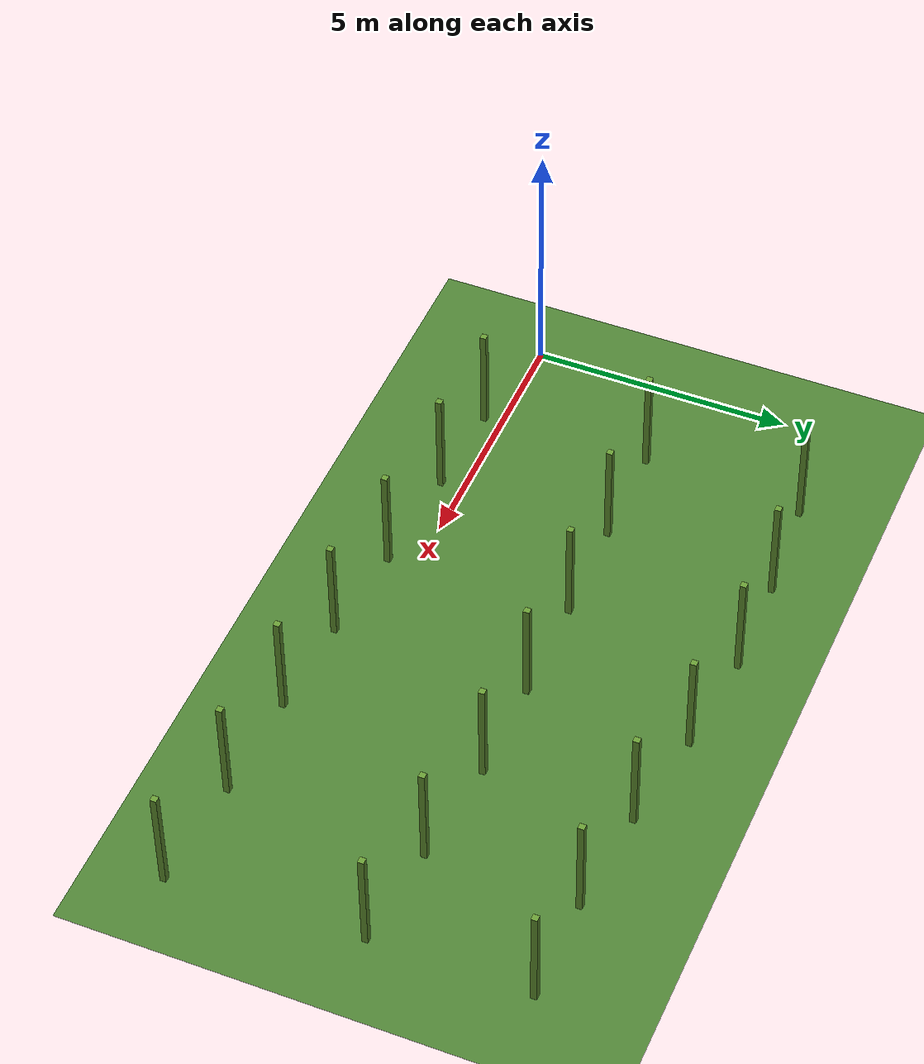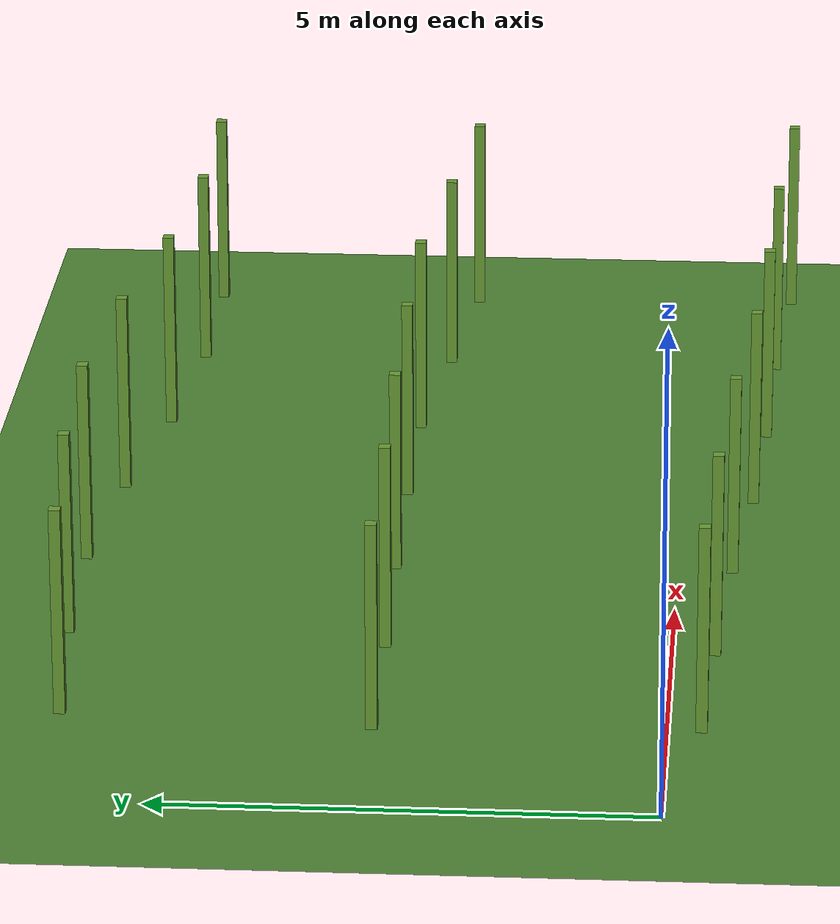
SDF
<?xml version="1.0"?>
<sdf version='1.9'>
  <world name='minha_fazenda'>

    <!-- ── Required world plugins (Harmonic) ─────────────────────────────── -->
    <plugin filename="gz-sim-physics-system"
            name="gz::sim::systems::Physics"/>

    <plugin filename="gz-sim-user-commands-system"
            name="gz::sim::systems::UserCommands"/>

    <!-- gz-sim-sensors-system -->
    <plugin filename="gz-sim-sensors-system"
            name="gz::sim::systems::Sensors">
      <render_engine>ogre2</render_engine>
    </plugin>

    <!-- gz-sim-rendering-system -->
    <plugin filename="gz-sim-rendering-system"
            name="gz::sim::systems::Rendering"/>

    <!-- gz-sim-scene-broadcaster-system -->
    <plugin filename="gz-sim-scene-broadcaster-system"
            name="gz::sim::systems::SceneBroadcaster"/>

    <!-- ── Lighting ──────────────────────────────────────────────────────── -->
    <light name='sun' type='directional'>
      <cast_shadows>true</cast_shadows>
      <pose>0 0 10 0 0 0</pose>
      <diffuse>0.8 0.8 0.8 1</diffuse>
      <specular>0.2 0.2 0.2 1</specular>
      <attenuation>
        <range>1000</range>
        <constant>0.9</constant>
        <linear>0.01</linear>
        <quadratic>0.001</quadratic>
      </attenuation>
      <direction>-0.5 0.1 -0.9</direction>
    </light>

    <!-- ── Ground plane (inlined — Classic model repo not used in Harmonic) ─ -->
    <model name='ground_plane'>
      <static>true</static>
      <link name='link'>
        <collision name='collision'>
          <geometry>
            <plane>
              <normal>0 0 1</normal>
              <size>200 200</size>
            </plane>
          </geometry>
          <surface>
            <friction>
              <ode>
                <mu>100</mu>
                <mu2>50</mu2>
              </ode>
            </friction>
          </surface>
        </collision>
        <visual name='visual'>
          <cast_shadows>false</cast_shadows>
          <geometry>
            <plane>
              <normal>0 0 1</normal>
              <size>200 200</size>
            </plane>
          </geometry>
          <material>
            <ambient>0.3 0.5 0.2 1</ambient>
            <diffuse>0.3 0.5 0.2 1</diffuse>
          </material>
        </visual>
      </link>
    </model>

    <!-- ── Physics ───────────────────────────────────────────────────────── -->
    <gravity>0 0 -9.8</gravity>
    <magnetic_field>6e-06 2.3e-05 -4.2e-05</magnetic_field>
    <atmosphere type='adiabatic'/>
    <physics type='ode'>
      <max_step_size>0.001</max_step_size>
      <real_time_factor>1</real_time_factor>
      <real_time_update_rate>1000</real_time_update_rate>
    </physics>

    <!-- ── Spherical coordinates for GPS simulation ──────────────────────── -->
    <!-- Caatinga region reference point — matches rastreabilidade_ue.py -->
    <spherical_coordinates>
      <surface_model>EARTH_WGS84</surface_model>
      <latitude_deg>-5.1873</latitude_deg>
      <longitude_deg>-39.2936</longitude_deg>
      <elevation>0</elevation>
      <heading_deg>0</heading_deg>
    </spherical_coordinates>

    <!-- Row 1 — y ≈ 0 -->
    <model name='row1_post_0'><static>true</static><pose>2.028 -0.340 1.095 0 0 -0.0032</pose>
      <link name='link'><collision name='c'><geometry><box><size>0.119 0.117 2.189</size></box></geometry></collision>
      <visual name='v'><geometry><box><size>0.119 0.117 2.189</size></box></geometry><material><ambient>0.4 0.6 0.2 1</ambient></material></visual></link></model>

    <model name='row1_post_1'><static>true</static><pose>3.912 -0.438 1.095 0 0 -0.0035</pose>
      <link name='link'><collision name='c'><geometry><box><size>0.119 0.117 2.189</size></box></geometry></collision>
      <visual name='v'><geometry><box><size>0.119 0.117 2.189</size></box></geometry><material><ambient>0.4 0.6 0.2 1</ambient></material></visual></link></model>

    <model name='row1_post_2'><static>true</static><pose>6.060 -0.577 1.095 0 0 -0.0014</pose>
      <link name='link'><collision name='c'><geometry><box><size>0.119 0.117 2.189</size></box></geometry></collision>
      <visual name='v'><geometry><box><size>0.119 0.117 2.189</size></box></geometry><material><ambient>0.4 0.6 0.2 1</ambient></material></visual></link></model>

    <model name='row1_post_3'><static>true</static><pose>8.005 -0.771 1.095 0 0 -0.0019</pose>
      <link name='link'><collision name='c'><geometry><box><size>0.119 0.117 2.189</size></box></geometry></collision>
      <visual name='v'><geometry><box><size>0.119 0.117 2.189</size></box></geometry><material><ambient>0.4 0.6 0.2 1</ambient></material></visual></link></model>

    <model name='row1_post_4'><static>true</static><pose>9.950 -0.888 1.095 0 0 -0.0026</pose>
      <link name='link'><collision name='c'><geometry><box><size>0.119 0.117 2.189</size></box></geometry></collision>
      <visual name='v'><geometry><box><size>0.119 0.117 2.189</size></box></geometry><material><ambient>0.4 0.6 0.2 1</ambient></material></visual></link></model>

    <model name='row1_post_5'><static>true</static><pose>12.051 -0.970 1.095 0 0 -0.0035</pose>
      <link name='link'><collision name='c'><geometry><box><size>0.119 0.117 2.189</size></box></geometry></collision>
      <visual name='v'><geometry><box><size>0.119 0.117 2.189</size></box></geometry><material><ambient>0.4 0.6 0.2 1</ambient></material></visual></link></model>

    <model name='row1_post_6'><static>true</static><pose>14.192 -1.132 1.095 0 0 -0.0020</pose>
      <link name='link'><collision name='c'><geometry><box><size>0.119 0.117 2.189</size></box></geometry></collision>
      <visual name='v'><geometry><box><size>0.119 0.117 2.189</size></box></geometry><material><ambient>0.4 0.6 0.2 1</ambient></material></visual></link></model>

    <!-- Row 2 — y ≈ 2.9 -->
    <model name='row2_post_0'><static>true</static><pose>1.909 2.922 1.095 0 0 -0.0024</pose>
      <link name='link'><collision name='c'><geometry><box><size>0.119 0.117 2.189</size></box></geometry></collision>
      <visual name='v'><geometry><box><size>0.119 0.117 2.189</size></box></geometry><material><ambient>0.4 0.6 0.2 1</ambient></material></visual></link></model>

    <model name='row2_post_1'><static>true</static><pose>3.922 2.932 1.095 0 0 -0.0045</pose>
      <link name='link'><collision name='c'><geometry><box><size>0.119 0.117 2.189</size></box></geometry></collision>
      <visual name='v'><geometry><box><size>0.119 0.117 2.189</size></box></geometry><material><ambient>0.4 0.6 0.2 1</ambient></material></visual></link></model>

    <model name='row2_post_2'><static>true</static><pose>5.962 2.973 1.095 0 0 -0.0031</pose>
      <link name='link'><collision name='c'><geometry><box><size>0.119 0.117 2.189</size></box></geometry></collision>
      <visual name='v'><geometry><box><size>0.119 0.117 2.189</size></box></geometry><material><ambient>0.4 0.6 0.2 1</ambient></material></visual></link></model>

    <model name='row2_post_3'><static>true</static><pose>8.020 2.987 1.095 0 0 -0.0035</pose>
      <link name='link'><collision name='c'><geometry><box><size>0.119 0.117 2.189</size></box></geometry></collision>
      <visual name='v'><geometry><box><size>0.119 0.117 2.189</size></box></geometry><material><ambient>0.4 0.6 0.2 1</ambient></material></visual></link></model>

    <model name='row2_post_4'><static>true</static><pose>9.999 2.974 1.095 0 0 -0.0026</pose>
      <link name='link'><collision name='c'><geometry><box><size>0.119 0.117 2.189</size></box></geometry></collision>
      <visual name='v'><geometry><box><size>0.119 0.117 2.189</size></box></geometry><material><ambient>0.4 0.6 0.2 1</ambient></material></visual></link></model>

    <model name='row2_post_5'><static>true</static><pose>12.049 2.757 1.095 0 0 -0.0023</pose>
      <link name='link'><collision name='c'><geometry><box><size>0.119 0.117 2.189</size></box></geometry></collision>
      <visual name='v'><geometry><box><size>0.119 0.117 2.189</size></box></geometry><material><ambient>0.4 0.6 0.2 1</ambient></material></visual></link></model>

    <!-- Row 3 — y ≈ 5.1 -->
    <model name='row3_post_0'><static>true</static><pose>2.089 6.051 1.095 0 0 -0.0025</pose>
      <link name='link'><collision name='c'><geometry><box><size>0.119 0.117 2.189</size></box></geometry></collision>
      <visual name='v'><geometry><box><size>0.119 0.117 2.189</size></box></geometry><material><ambient>0.4 0.6 0.2 1</ambient></material></visual></link></model>

    <model name='row3_post_1'><static>true</static><pose>4.084 6.210 1.095 0 0 -0.0030</pose>
      <link name='link'><collision name='c'><geometry><box><size>0.119 0.117 2.189</size></box></geometry></collision>
      <visual name='v'><geometry><box><size>0.119 0.117 2.189</size></box></geometry><material><ambient>0.4 0.6 0.2 1</ambient></material></visual></link></model>

    <model name='row3_post_2'><static>true</static><pose>6.030 6.257 1.095 0 0 -0.0024</pose>
      <link name='link'><collision name='c'><geometry><box><size>0.119 0.117 2.189</size></box></geometry></collision>
      <visual name='v'><geometry><box><size>0.119 0.117 2.189</size></box></geometry><material><ambient>0.4 0.6 0.2 1</ambient></material></visual></link></model>

    <model name='row3_post_3'><static>true</static><pose>8.036 6.075 1.095 0 0 -0.0031</pose>
      <link name='link'><collision name='c'><geometry><box><size>0.119 0.117 2.189</size></box></geometry></collision>
      <visual name='v'><geometry><box><size>0.119 0.117 2.189</size></box></geometry><material><ambient>0.4 0.6 0.2 1</ambient></material></visual></link></model>

    <model name='row3_post_4'><static>true</static><pose>9.992 5.779 1.095 0 0 -0.0040</pose>
      <link name='link'><collision name='c'><geometry><box><size>0.119 0.117 2.189</size></box></geometry></collision>
      <visual name='v'><geometry><box><size>0.119 0.117 2.189</size></box></geometry><material><ambient>0.4 0.6 0.2 1</ambient></material></visual></link></model>

    <model name='row3_post_5'><static>true</static><pose>12.042 5.602 1.095 0 0 -0.0019</pose>
      <link name='link'><collision name='c'><geometry><box><size>0.119 0.117 2.189</size></box></geometry></collision>
      <visual name='v'><geometry><box><size>0.119 0.117 2.189</size></box></geometry><material><ambient>0.4 0.6 0.2 1</ambient></material></visual></link></model>

    <model name='row3_post_6'><static>true</static><pose>14.044 2.549 1.095 0 0 -0.0017</pose>
      <link name='link'><collision name='c'><geometry><box><size>0.119 0.117 2.189</size></box></geometry></collision>
      <visual name='v'><geometry><box><size>0.119 0.117 2.189</size></box></geometry><material><ambient>0.4 0.6 0.2 1</ambient></material></visual></link></model>

    <model name='row3_post_7'><static>true</static><pose>14.030 5.588 1.095 0 0 -0.0034</pose>
      <link name='link'><collision name='c'><geometry><box><size>0.119 0.117 2.189</size></box></geometry></collision>
      <visual name='v'><geometry><box><size>0.119 0.117 2.189</size></box></geometry><material><ambient>0.4 0.6 0.2 1</ambient></material></visual></link></model>

    <!-- ── GUI camera hint ───────────────────────────────────────────────── -->
    <gui fullscreen='false'>
      <camera name='user_camera'>
        <pose>9.620 22.205 9.735 0 0.608 -0.939</pose>
      </camera>
    </gui>

  </world>
</sdf>
